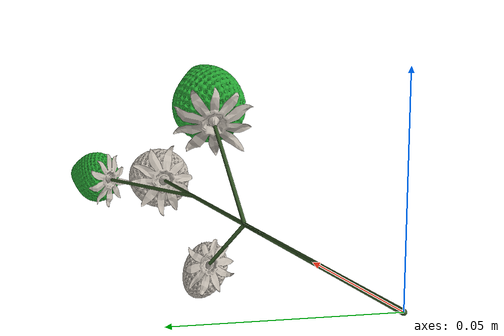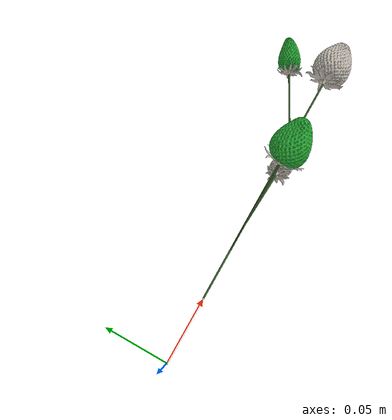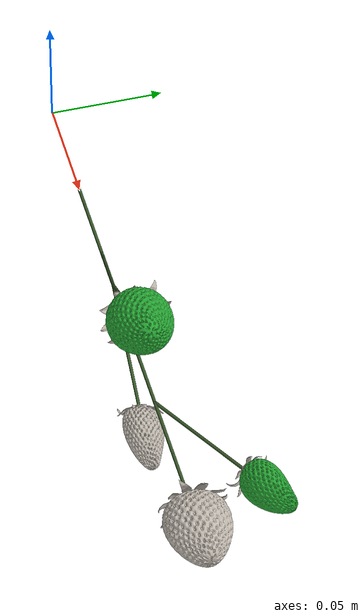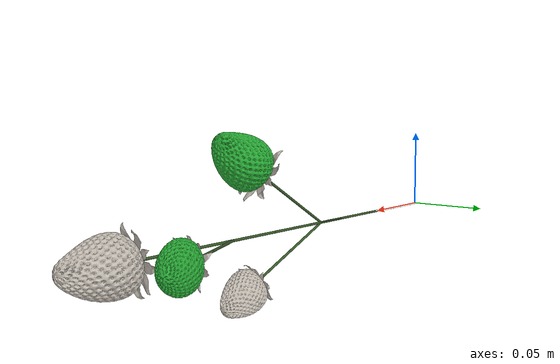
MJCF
<mujoco model="strawb_vine">
  <compiler angle="radian" meshdir="assets/"/>

  <default>
    <default class="vine">
      <joint type="ball" stiffness="0.02" armature="0.0001" damping="0.01" actuatorfrclimited="false"/>
      <geom  type="capsule" size="0.0007" mass="0.0001"
             solref="0.001 1" solimp="0.97 0.995 0.0005 0.5 2"
             rgba="0.208 0.337 0.149 1"/>
    </default>
  </default>

  <asset>
    <texture name="strawb_leaves"   type="2d" file="textures/strawberry_leaves_512.png"/>
    <texture name="strawb_texture"  type="2d" file="textures/strawberry_fixed_512.png"/>
    <texture name="strawb_green"    type="2d" file="textures/strawberry_fixed_512_green.png"/>
    <material name="strawberry_material" texture="strawb_texture"  shininess="0.01" specular="0.01" reflectance="0.05" texuniform="true"/>
    <material name="strawberry_leaves"   texture="strawb_leaves"   shininess="0.1"  specular="0.1"  reflectance="0.5"  texuniform="true"/>
    <material name="strawberry_material_green"   texture="strawb_green"   shininess="0.1"  specular="0.1"  reflectance="0.5"  texuniform="true"/>

    <mesh name="strawberry"            file="strawberry_origin.obj"           scale="1 1 1"/>
    <mesh name="strawberry_leaves"     file="strawberry_leaves_origin.obj"    scale="1 1 1"/>
    <mesh name="strawberry_collision"  file="strawberry_collision_origin.obj" scale="1 1 1"/>
    <mesh name="strawberry_small"      file="strawberry_origin.obj"           scale="0.8 0.8 0.6"/>
    <mesh name="strawberry_leaves_small"     file="strawberry_leaves_origin.obj"    scale="0.8 0.8 0.6"/>
    <mesh name="strawberry_collision_small"  file="strawberry_collision_origin.obj" scale="0.8 0.8 0.6"/>
  </asset>

  <worldbody>
    <!-- root at origin; rotate/place when attaching in the parent scene -->
    <body name="vine_root">

      <!-- main chain -->
      <body name="seg_first">
        <geom class="vine" name="seg0" fromto="0 0 0  0.03 0 0"/>
        <site name="seg_first" pos="0 0 0" group="3"/>

        <body name="seg_1" pos="0.03 0 0">
          <joint class="vine" name="j1"/>
          <geom  class="vine" name="seg1" fromto="0 0 0  0.03 0 0"/>

          <body name="seg_2" pos="0.03 0 0">
            <joint class="vine" name="j2"/>
            <geom  class="vine" name="seg2" fromto="0 0 0  0.03 0 0"/>

            <!-- NEW higher fork that splits into two fruit (C & D) -->
            <body name="fork_top" pos="0.03 0 0">
              <joint class="vine" name="j_fork_top"/>
              <geom  class="vine" name="seg_fork_top" fromto="0 0 0  0.02 0 0"/>
              <site  name="fork_top_site" pos="0.02 0 0" group="3"/>

              <!-- branch C -->
              <body name="branch_c" pos="0.02 0 0" euler="-1.2 0.2 0.4">
                <joint class="vine" name="j_branch_c"/>
                <geom  class="vine" name="seg_branch_c" fromto="0 0 0  0.03 0 0"/>
                <body name="stem_c" pos="0.03 0 0">
                  <geom class="vine" name="stem_c_caps" fromto="0 0 0  0.024 0 0"/>
                  <site name="stem_c_site" pos="0.024 0 0" size="0.0012" rgba="0 0 1 1" group="3"/>
                  <body name="fruit_c" pos="0.024 0 0" euler="0 0 1.57">
                    <geom name="fruit_c_col"   type="mesh" mesh="strawberry_collision_small" density="400" group="3"/>
                    <geom name="fruit_c_vis"   type="mesh" mesh="strawberry_small"          material="strawberry_material" contype="0" conaffinity="0"/>
                    <geom name="leaves_c_vis"  type="mesh" mesh="strawberry_leaves_small"   material="strawberry_leaves"   contype="0" conaffinity="0"/>
                  </body>
                </body>
              </body>

              <!-- branch D -->
              <body name="branch_d" pos="0.02 0 0" euler="-1.0 -0.3 -0.5">
                <joint class="vine" name="j_branch_d"/>
                <geom  class="vine" name="seg_branch_d" fromto="0 0 0  0.03 0 0"/>
                <body name="stem_d" pos="0.03 0 0">
                  <geom class="vine" name="stem_d_caps" fromto="0 0 0  0.024 0 0"/>
                  <site name="stem_d_site" pos="0.024 0 0" size="0.0012" rgba="0 0 1 1" group="3"/>
                  <body name="fruit_d" pos="0.024 0 0" euler="0 0 1.57">
                    <geom name="fruit_d_col"   type="mesh" mesh="strawberry_collision" density="400" group="3"/>
                    <geom name="fruit_d_vis"   type="mesh" mesh="strawberry"          material="strawberry_material_green" contype="0" conaffinity="0"/>
                    <geom name="leaves_d_vis"  type="mesh" mesh="strawberry_leaves"   material="strawberry_leaves"   contype="0" conaffinity="0"/>
                  </body>
                </body>
              </body>
            </body>
            <!-- END new higher fork -->

            <!-- extend main chain with a few more segments -->
            <body name="seg_3" pos="0.03 0 0">
              <joint class="vine" name="j3"/>
              <geom  class="vine" name="seg3" fromto="0 0 0  0.03 0 0"/>

              <body name="seg_4" pos="0.03 0 0">
                <joint class="vine" name="j4"/>
                <geom  class="vine" name="seg4" fromto="0 0 0  0.03 0 0"/>

                <body name="seg_last" pos="0.03 0 0">
                  <joint class="vine" name="j_last"/>
                  <geom  class="vine" name="seg5" fromto="0 0 0  0.03 0 0"/>
                  <site  name="seg_last" pos="0.03 0 0" group="3"/>

                  <!-- Original tip forks (A & B) kept as-is -->
                  <body name="fork1" pos="0.03 0 0" euler="-1.5 -0.5 0">
                    <joint class="vine" name="j_fork1"/>
                    <geom  class="vine" name="seg_fork1" fromto="0 0 0  0.03 0 0"/>
                    <site  name="fork1_end" pos="0.03 0 0" group="3"/>
                    <body name="stem_a" pos="0.03 0 0">
                      <geom class="vine" name="stem_a_caps" fromto="0 0 0  0.024 0 0"/>
                      <site name="stem_a_site" pos="0.024 0 0" size="0.0012" rgba="0 0 1 1" group="3"/>
                      <body name="fruit_a" pos="0.024 0 0" euler="0 0 1.57">
                        <geom name="fruit_a_col"   type="mesh" mesh="strawberry_collision_small" density="400" group="3"/>
                        <geom name="fruit_a_vis"   type="mesh" mesh="strawberry_small"          material="strawberry_material_green" contype="0" conaffinity="0"/>
                        <geom name="leaves_a_vis"  type="mesh" mesh="strawberry_leaves_small"   material="strawberry_leaves"   contype="0" conaffinity="0"/>
                      </body>
                    </body>
                  </body>

                  <body name="fork2" pos="0.03 0 0">
                    <joint class="vine" name="j_fork2"/>
                    <geom  class="vine" name="seg_fork2" fromto="0 0 0  0.03 0 0"/>
                    <site  name="fork2_end" pos="0.03 0 0" group="3"/>
                    <body name="stem_b" pos="0.03 0 0">
                      <geom class="vine" name="stem_b_caps" fromto="0 0 0  0.024 0 0"/>
                      <site name="stem_b_site" pos="0.024 0 0" size="0.0012" rgba="0 0 1 1" group="3"/>
                      <body name="fruit_b" pos="0.024 0 0" euler="0 0 1.57">
                        <geom name="fruit_b_col"   type="mesh" mesh="strawberry_collision" density="400" group="3"/>
                        <geom name="fruit_b_vis"   type="mesh" mesh="strawberry"          material="strawberry_material" contype="0" conaffinity="0"/>
                        <geom name="leaves_b_vis"  type="mesh" mesh="strawberry_leaves"   material="strawberry_leaves"   contype="0" conaffinity="0"/>
                      </body>
                    </body>
                  </body>

                </body>
              </body>
            </body>
          </body>
        </body>
      </body>
      <!-- end main chain -->

    </body>
  </worldbody>
</mujoco>
